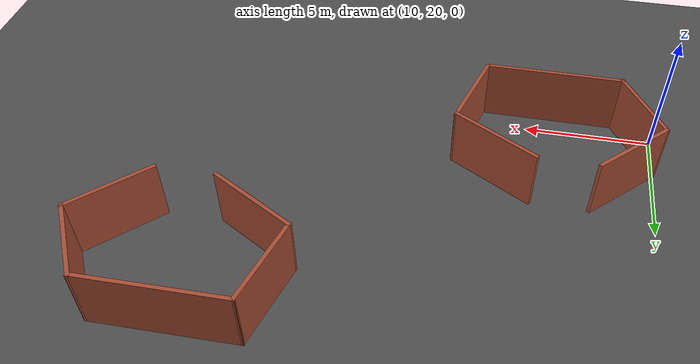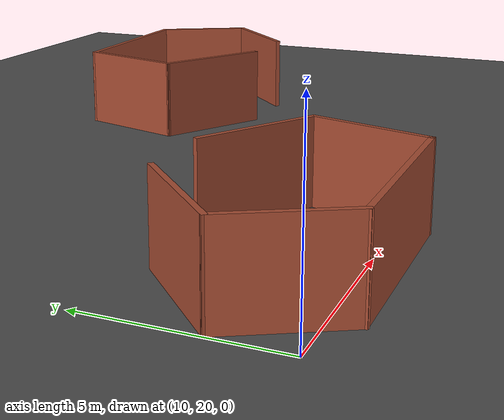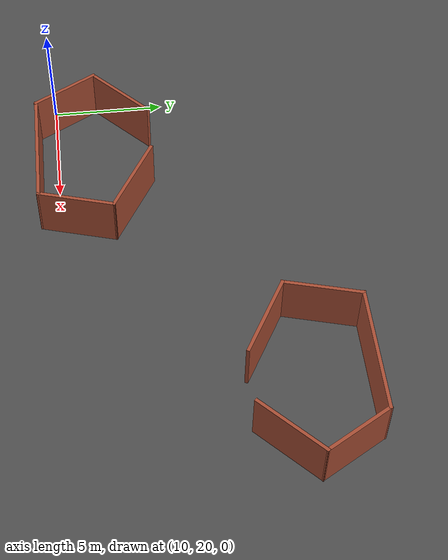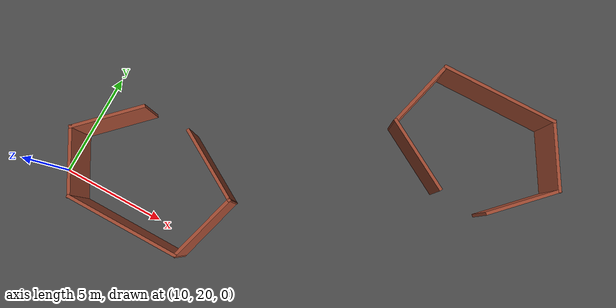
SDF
<sdf version="1.6">
 <world name="default">
  <model name="ground_plane">
   <static>1</static>
   <link name="link">
    <collision name="collision">
     <geometry><plane><normal>0 0 1</normal><size>250 250</size></plane></geometry>
     <surface><friction><ode><mu>100</mu><mu2>50</mu2></ode></friction></surface>
    </collision>
    <visual name="visual">
     <cast_shadows>0</cast_shadows>
     <geometry><plane><normal>0 0 1</normal><size>250 250</size></plane></geometry>
     <material>
      <script><uri>file://media/materials/scripts/gazebo.material</uri><name>Gazebo/Grey</name></script>
     </material>
    </visual>
   </link>
  </model>
  <model name="brick_room1_clone_clone_clone_1">
   <pose>13.8901 21.7285 0 0 -0 3.12624</pose>
   <link name="Wall_11">
    <collision name="Wall_11_Collision">
     <geometry><box><size>3.25 0.15 2.5</size></box></geometry>
     <pose>0 0 1.25 0 -0 0</pose>
    </collision>
    <visual name="Wall_11_Visual">
     <pose>0 0 1.25 0 -0 0</pose>
     <geometry><box><size>3.25 0.15 2.5</size></box></geometry>
     <material>
      <script><uri>file://media/materials/scripts/gazebo.material</uri><name>Gazebo/Bricks</name></script>
      <ambient>1 1 1 1</ambient>
     </material>
    </visual>
    <pose>3.12132 1.19483 0 0 0 -1.0472</pose>
   </link>
   <link name="Wall_12">
    <collision name="Wall_12_Collision">
     <geometry><box><size>3.5 0.15 2.5</size></box></geometry>
     <pose>0 0 1.25 0 -0 0</pose>
    </collision>
    <visual name="Wall_12_Visual">
     <pose>0 0 1.25 0 -0 0</pose>
     <geometry><box><size>3.5 0.15 2.5</size></box></geometry>
     <material>
      <script><uri>file://media/materials/scripts/gazebo.material</uri><name>Gazebo/Bricks</name></script>
      <ambient>1 1 1 1</ambient>
     </material>
    </visual>
    <pose>2.71192 -1.33192 0 0 0 -2.35619</pose>
   </link>
   <link name="Wall_7">
    <collision name="Wall_7_Collision">
     <geometry><box><size>5.52935 0.15 2.5</size></box></geometry>
     <pose>0 0 1.25 0 -0 0</pose>
    </collision>
    <visual name="Wall_7_Visual">
     <pose>0 0 1.25 0 -0 0</pose>
     <geometry><box><size>5.52935 0.15 2.5</size></box></geometry>
     <material>
      <script><uri>file://media/materials/scripts/gazebo.material</uri><name>Gazebo/Bricks</name></script>
      <ambient>1 1 1 1</ambient>
     </material>
    </visual>
    <pose>-0.343285 2.51793 0 0 0 -3.13444</pose>
   </link>
   <link name="Wall_8">
    <collision name="Wall_8_Collision">
     <geometry><box><size>3.5 0.15 2.5</size></box></geometry>
     <pose>0 0 1.25 0 -0 0</pose>
    </collision>
    <visual name="Wall_8_Visual">
     <pose>0 0 1.25 0 -0 0</pose>
     <geometry><box><size>3.5 0.15 2.5</size></box></geometry>
     <material>
      <script><uri>file://media/materials/scripts/gazebo.material</uri><name>Gazebo/Bricks</name></script>
      <ambient>1 1 1 1</ambient>
     </material>
    </visual>
    <pose>-3.46641 0.880761 0 0 0 -1.8326</pose>
   </link>
   <link name="Wall_9">
    <collision name="Wall_9_Collision">
     <geometry><box><size>3.75 0.15 2.5</size></box></geometry>
     <pose>0 0 1.25 0 -0 0</pose>
    </collision>
    <visual name="Wall_9_Visual">
     <pose>0 0 1.25 0 -0 0</pose>
     <geometry><box><size>3.75 0.15 2.5</size></box></geometry>
     <material>
      <script><uri>file://media/materials/scripts/gazebo.material</uri><name>Gazebo/Bricks</name></script>
      <ambient>1 1 1 1</ambient>
     </material>
    </visual>
    <pose>-2.34109 -1.63716 0 0 0 -0.523599</pose>
   </link>
   <static>1</static>
  </model>
  <model name="asphalt_plane">
   <static>1</static>
   <link name="link">
    <collision name="collision"><geometry><box><size>250 250 0.1</size></box></geometry></collision>
    <visual name="visual">
     <cast_shadows>0</cast_shadows>
     <geometry><box><size>250 250 0.1</size></box></geometry>
     <material>
      <script>
       <uri>model://asphalt_plane/materials/scripts</uri>
       <uri>model://asphalt_plane/materials/textures</uri>
       <name>vrc/asphalt</name>
      </script>
     </material>
    </visual>
   </link>
   <pose>15.141 -2.59476 0 0 -0 0</pose>
  </model>
  <model name="brick_room1_clone_clone_5">
   <pose>26.5256 29.7616 0 0 -0 0</pose>
   <link name="Wall_11">
    <collision name="Wall_11_Collision">
     <geometry><box><size>3.25 0.15 2.5</size></box></geometry>
     <pose>0 0 1.25 0 -0 0</pose>
    </collision>
    <visual name="Wall_11_Visual">
     <pose>0 0 1.25 0 -0 0</pose>
     <geometry><box><size>3.25 0.15 2.5</size></box></geometry>
     <material>
      <script><uri>file://media/materials/scripts/gazebo.material</uri><name>Gazebo/Bricks</name></script>
      <ambient>1 1 1 1</ambient>
     </material>
    </visual>
    <pose>3.12132 1.19483 0 0 0 -1.0472</pose>
   </link>
   <link name="Wall_12">
    <collision name="Wall_12_Collision">
     <geometry><box><size>3.5 0.15 2.5</size></box></geometry>
     <pose>0 0 1.25 0 -0 0</pose>
    </collision>
    <visual name="Wall_12_Visual">
     <pose>0 0 1.25 0 -0 0</pose>
     <geometry><box><size>3.5 0.15 2.5</size></box></geometry>
     <material>
      <script><uri>file://media/materials/scripts/gazebo.material</uri><name>Gazebo/Bricks</name></script>
      <ambient>1 1 1 1</ambient>
     </material>
    </visual>
    <pose>2.71192 -1.33192 0 0 0 -2.35619</pose>
   </link>
   <link name="Wall_7">
    <collision name="Wall_7_Collision">
     <geometry><box><size>5.52935 0.15 2.5</size></box></geometry>
     <pose>0 0 1.25 0 -0 0</pose>
    </collision>
    <visual name="Wall_7_Visual">
     <pose>0 0 1.25 0 -0 0</pose>
     <geometry><box><size>5.52935 0.15 2.5</size></box></geometry>
     <material>
      <script><uri>file://media/materials/scripts/gazebo.material</uri><name>Gazebo/Bricks</name></script>
      <ambient>1 1 1 1</ambient>
     </material>
    </visual>
    <pose>-0.343285 2.51793 0 0 0 -3.13444</pose>
   </link>
   <link name="Wall_8">
    <collision name="Wall_8_Collision">
     <geometry><box><size>3.5 0.15 2.5</size></box></geometry>
     <pose>0 0 1.25 0 -0 0</pose>
    </collision>
    <visual name="Wall_8_Visual">
     <pose>0 0 1.25 0 -0 0</pose>
     <geometry><box><size>3.5 0.15 2.5</size></box></geometry>
     <material>
      <script><uri>file://media/materials/scripts/gazebo.material</uri><name>Gazebo/Bricks</name></script>
      <ambient>1 1 1 1</ambient>
     </material>
    </visual>
    <pose>-3.46641 0.880761 0 0 0 -1.8326</pose>
   </link>
   <link name="Wall_9">
    <collision name="Wall_9_Collision">
     <geometry><box><size>3.75 0.15 2.5</size></box></geometry>
     <pose>0 0 1.25 0 -0 0</pose>
    </collision>
    <visual name="Wall_9_Visual">
     <pose>0 0 1.25 0 -0 0</pose>
     <geometry><box><size>3.75 0.15 2.5</size></box></geometry>
     <material>
      <script><uri>file://media/materials/scripts/gazebo.material</uri><name>Gazebo/Bricks</name></script>
      <ambient>1 1 1 1</ambient>
     </material>
    </visual>
    <pose>-2.34109 -1.63716 0 0 0 -0.523599</pose>
   </link>
   <static>1</static>
  </model>
 </world>
</sdf>
